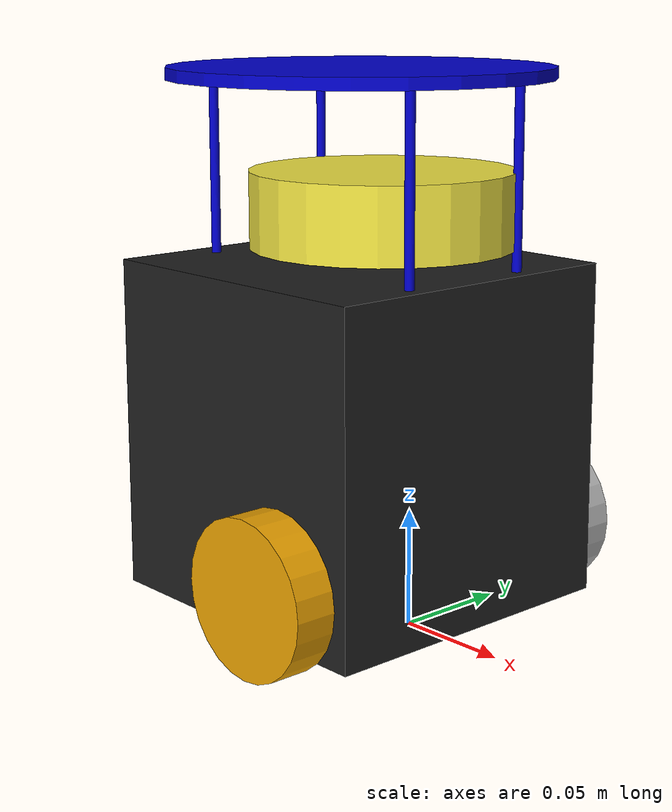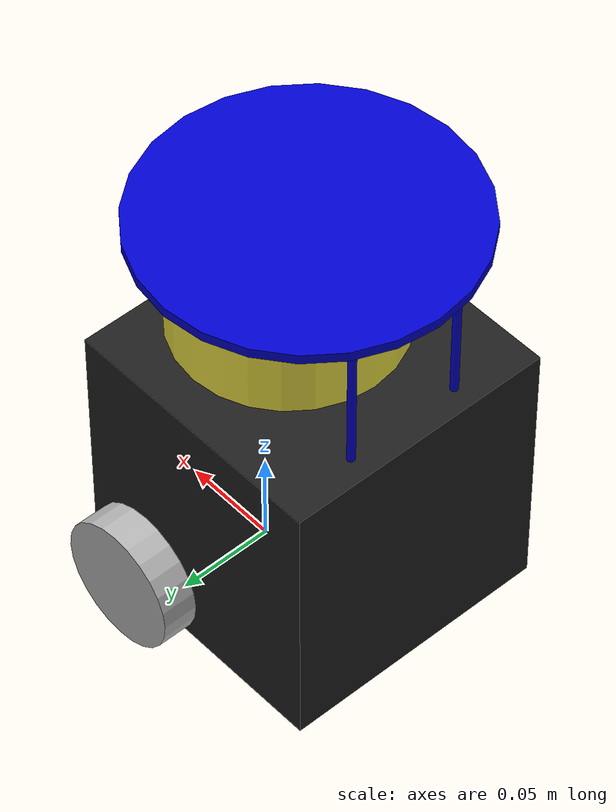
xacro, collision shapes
<?xml version="1.0" ?>
<robot name="turtlebot3_burger" xmlns:xacro="http://ros.org/wiki/xacro">
  <xacro:include filename="$(find turtlebot3_description)/urdf/common_properties.xacro"/>
  <xacro:include filename="$(find turtlebot3_description)/urdf/turtlebot3_burger.gazebo.xacro"/>
  <xacro:property name="radius" default="0.002" />
  <xacro:property name="pillar_length" value="0.08" />
  <xacro:property name="mass" value="$(arg mass)" />

  <!-- Macro for the inertia of a cylinder -->
  <xacro:macro name="cyl_inertia" params="h r mass">
    <inertia ixx="${0.0833333 * mass * (3*r*r + h*h)}" ixy="0.0" ixz="0.0"
      iyy="${0.0833333 * mass * (3*r*r + h*h)}" iyz="0.0"
      izz="${0.5 * mass * (r*r)}" />
  </xacro:macro>

  <link name="base_footprint"/>

  <joint name="base_joint" type="fixed">
    <parent link="base_footprint"/>
    <child link="base_link"/>
    <origin xyz="0.0 0.0 0.010" rpy="0 0 0"/>
  </joint>

  <joint name="base_to_fl_pillar" type="fixed">
    <origin xyz="0.03 0.03 ${(pillar_length/2) + 0.14}" rpy="0 0 0" />
    <parent link="base_link" />
    <child link="front_left_pillar" />
  </joint>

  <link name="front_left_pillar">
      <visual>
        <geometry>
          <cylinder length="${pillar_length}" radius="${radius}"/>
        </geometry>
        <material name="blue">
          <color rgba="0 0 0.8 1"/>
        </material>
      </visual>
      <collision>
        <geometry>
          <cylinder length="${pillar_length}" radius="${radius}"/>
        </geometry>
      </collision>
      <inertial>
        <mass value="0.1"/>
        <xacro:cyl_inertia h="${pillar_length}" r="${radius}" mass="0.1"/>
      </inertial>
  </link>

  <joint name="base_to_fr_pillar" type="fixed">
    <origin xyz="0.03 -0.03 ${(pillar_length/2) + 0.14}" rpy="0 0 0" />
    <parent link="base_link" />
    <child link="front_right_pillar" />
  </joint>

  <link name="front_right_pillar">
      <visual>
        <geometry>
          <cylinder length="${pillar_length}" radius="${radius}"/>
        </geometry>
        <material name="blue">
          <color rgba="0 0 0.8 1"/>
        </material>
      </visual>
      <collision>
        <geometry>
          <cylinder length="${pillar_length}" radius="${radius}"/>
        </geometry>
      </collision>
      <inertial>
        <mass value="0.1"/>
        <xacro:cyl_inertia h="${pillar_length}" r="${radius}" mass="0.1"/>
      </inertial>
  </link>

  <joint name="base_to_br_pillar" type="fixed">
    <origin xyz="-0.09 -0.03 ${(pillar_length/2) + 0.14}" rpy="0 0 0" />
    <parent link="base_link" />
    <child link="back_right_pillar" />
  </joint>

  <link name="back_right_pillar">
      <visual>
        <geometry>
          <cylinder length="${pillar_length}" radius="${radius}"/>
        </geometry>
        <material name="blue">
          <color rgba="0 0 0.8 1"/>
        </material>
      </visual>
      <collision>
        <geometry>
          <cylinder length="${pillar_length}" radius="${radius}"/>
        </geometry>
      </collision>
      <inertial>
        <mass value="0.1"/>
        <xacro:cyl_inertia h="${pillar_length}" r="${radius}" mass="0.1"/>
      </inertial>
  </link>

  <joint name="base_to_bl_pillar" type="fixed">
    <origin xyz="-0.09 0.03 ${(pillar_length/2) + 0.14}" rpy="0 0 0" />
    <parent link="base_link" />
    <child link="back_left_pillar" />
  </joint>

  <link name="back_left_pillar">
      <visual>
        <geometry>
          <cylinder length="${pillar_length}" radius="${radius}"/>
        </geometry>
        <material name="blue">
          <color rgba="0 0 0.8 1"/>
        </material>
      </visual>
      <collision>
        <geometry>
          <cylinder length="${pillar_length}" radius="${radius}"/>
        </geometry>
      </collision>
      <inertial>
        <mass value="0.1"/>
        <xacro:cyl_inertia h="${pillar_length}" r="${radius}" mass="0.1"/>
      </inertial>
  </link>

  <joint name="base_to_disc" type="fixed">
    <origin xyz="-0.03 0.0 ${(pillar_length) + 0.14}" rpy="0 0 0" />
    <parent link="base_link" />
    <child link="disc" />
  </joint>

  <link name="disc">
      <visual>
        <geometry>
          <cylinder length="0.005" radius="0.08"/>
        </geometry>
        <material name="blue">
          <color rgba="0 0 0.8 1"/>
        </material>
      </visual>
      <collision>
        <geometry>
          <cylinder length="0.005" radius="0.08"/>
        </geometry>
      </collision>
      <inertial>
        <mass value="0.1"/>
        <xacro:cyl_inertia h="0.005" r="0.08" mass="0.1"/>
      </inertial>
  </link>

  <link name="base_link">
    <visual>
      <origin xyz="-0.032 0 0.0" rpy="0 0 0"/>
      <geometry>
        <mesh filename="package://turtlebot3_description/meshes/bases/burger_base.stl" scale="0.001 0.001 0.001"/>
      </geometry>
      <material name="light_black"/>
    </visual>

    <collision>
      <origin xyz="-0.032 0 0.070" rpy="0 0 0"/>
      <geometry>
        <box size="0.140 0.140 0.143"/>
      </geometry>
    </collision>

    <inertial>
      <origin xyz="0 0 0" rpy="0 0 0"/>
      <mass value="8.2573504e-01"/>
      <inertia ixx="2.2124416e-03" ixy="-1.2294101e-05" ixz="3.4938785e-05"
               iyy="2.1193702e-03" iyz="-5.0120904e-06"
               izz="2.0064271e-03" />
    </inertial>
  </link>

  <joint name="wheel_left_joint" type="fixed">
    <parent link="base_link"/>
    <child link="wheel_left_link"/>
    <origin xyz="0.0 0.08 0.023" rpy="-1.57 0 0"/>
    <axis xyz="0 0 1"/>
  </joint>

  <link name="wheel_left_link">
    <visual>
      <origin xyz="0 0 0" rpy="1.57 0 0"/>
      <geometry>
        <mesh filename="package://turtlebot3_description/meshes/wheels/left_tire.stl" scale="0.001 0.001 0.001"/>
      </geometry>
      <material name="dark"/>
    </visual>

    <collision>
      <origin xyz="0 0 0" rpy="0 0 0"/>
      <geometry>
        <cylinder length="0.018" radius="0.033"/>
      </geometry>
    </collision>

    <inertial>
      <origin xyz="0 0 0" />
      <mass value="2.8498940e-02" />
      <inertia ixx="1.1175580e-05" ixy="-4.2369783e-11" ixz="-5.9381719e-09"
               iyy="1.1192413e-05" iyz="-1.4400107e-11"
               izz="2.0712558e-05" />
      </inertial>
  </link>

  <joint name="wheel_right_joint" type="fixed">
    <parent link="base_link"/>
    <child link="wheel_right_link"/>
    <origin xyz="0.0 -0.080 0.023" rpy="-1.57 0 0"/>
    <axis xyz="0 0 1"/>
  </joint>

  <link name="wheel_right_link">
    <visual>
      <origin xyz="0 0 0" rpy="1.57 0 0"/>
      <geometry>
        <mesh filename="package://turtlebot3_description/meshes/wheels/right_tire.stl" scale="0.001 0.001 0.001"/>
      </geometry>
      <material name="dark"/>
    </visual>

    <collision>
      <origin xyz="0 0 0" rpy="0 0 0"/>
      <geometry>
        <cylinder length="0.018" radius="0.033"/>
      </geometry>
    </collision>

    <inertial>
      <origin xyz="0 0 0" />
      <mass value="2.8498940e-02" />
      <inertia ixx="1.1175580e-05" ixy="-4.2369783e-11" ixz="-5.9381719e-09"
               iyy="1.1192413e-05" iyz="-1.4400107e-11"
               izz="2.0712558e-05" />
      </inertial>
  </link>

  <joint name="caster_back_joint" type="fixed">
    <parent link="base_link"/>
    <child link="caster_back_link"/>
    <origin xyz="-0.081 0 -0.004" rpy="-1.57 0 0"/>
  </joint>

  <link name="caster_back_link">
    <collision>
      <origin xyz="0 0.001 0" rpy="0 0 0"/>
      <geometry>
        <box size="0.030 0.009 0.020"/>
      </geometry>
    </collision>

    <inertial>
      <origin xyz="0 0 0" />
      <mass value="0.005" />
      <inertia ixx="0.001" ixy="0.0" ixz="0.0"
               iyy="0.001" iyz="0.0"
               izz="0.001" />
    </inertial>
  </link>

  <joint name="imu_joint" type="fixed">
    <parent link="base_link"/>
    <child link="imu_link"/>
    <origin xyz="-0.032 0 0.068" rpy="0 0 0"/>
  </joint>

  <link name="imu_link"/>

  <joint name="scan_joint" type="fixed">
    <parent link="base_link"/>
    <child link="base_scan"/>
    <origin xyz="-0.032 0 0.172" rpy="0 0 0"/>
  </joint>

  <link name="base_scan">
    <visual>
      <origin xyz="0 0 0.0" rpy="0 0 0"/>
      <geometry>
        <mesh filename="package://turtlebot3_description/meshes/sensors/lds.stl" scale="0.001 0.001 0.001"/>
      </geometry>
      <material name="dark"/>
    </visual>

    <collision>
      <origin xyz="0.015 0 -0.0065" rpy="0 0 0"/>
      <geometry>
        <cylinder length="0.0315" radius="0.055"/>
      </geometry>
    </collision>

    <inertial>
      <mass value="0.114" />
      <origin xyz="0 0 0" />
      <inertia ixx="0.001" ixy="0.0" ixz="0.0"
               iyy="0.001" iyz="0.0"
               izz="0.001" />
    </inertial>
  </link>

  <link name="constraint">
    <visual>
      <origin xyz="0 0 0.0" rpy="0 0 0"/>
      <geometry>
        <mesh filename="package://ss_workshop/models/meshes/expParaboloidFull.stl" scale="1.0 1.0 1.0"/>
      </geometry>
      <material name="redTransparent">
        <color rgba="0.7 0 0.0 0.4"/>
      </material>
    </visual>
  </link>

  <joint name="constraint_joint" type="fixed">
    <parent link="disc"/>
    <child link="constraint"/>
    <origin xyz="0.0 0.0 0.0" rpy="0 0 0"/>
  </joint>

  <gazebo reference="constraint">
    <material>Gazebo/RedTransparent</material>
  </gazebo>

</robot>
